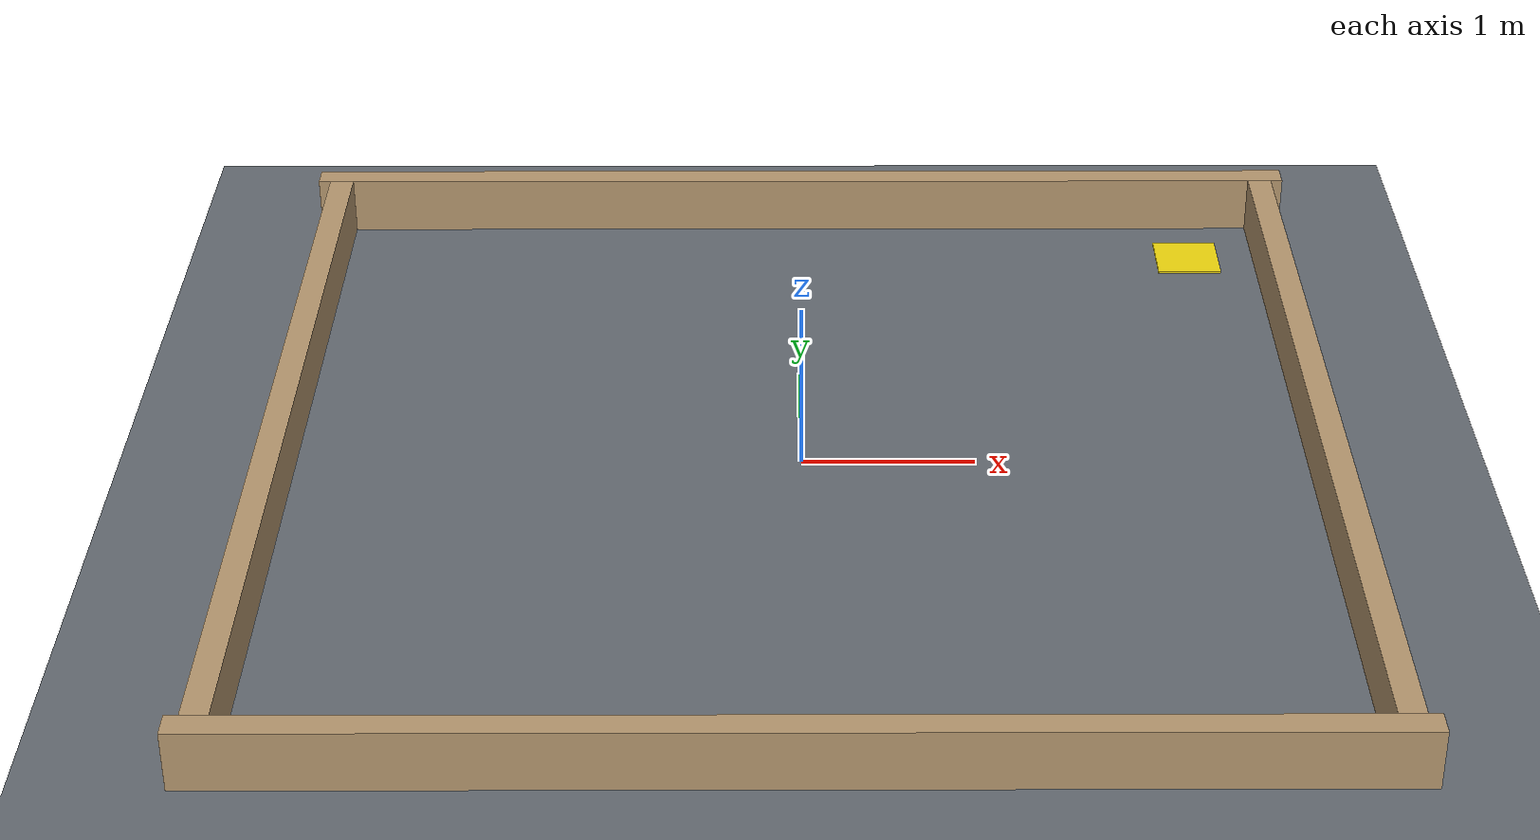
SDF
<sdf version="1.8">
 <world name="dynamic_obstacles">
  <physics name="1ms" type="ignored">
   <max_step_size>0.001</max_step_size>
   <real_time_factor>1.0</real_time_factor>
  </physics>
  <plugin filename="gz-sim-physics-system" name="gz::sim::systems::Physics"/>
  <plugin filename="gz-sim-sensors-system" name="gz::sim::systems::Sensors">
   <render_engine>ogre2</render_engine>
  </plugin>
  <plugin filename="gz-sim-user-commands-system" name="gz::sim::systems::UserCommands"/>
  <plugin filename="gz-sim-scene-broadcaster-system" name="gz::sim::systems::SceneBroadcaster"/>
  <plugin filename="gz-sim-contact-system" name="gz::sim::systems::Contact"/>
  <plugin filename="gz-sim-imu-system" name="gz::sim::systems::Imu"/>
  <light type="directional" name="overhead">
   <cast_shadows>false</cast_shadows>
   <pose>0 0 10 0 0 0</pose>
   <diffuse>1.0 1.0 1.0 1</diffuse>
   <specular>0.05 0.05 0.05 1</specular>
   <direction>0 0 -1</direction>
  </light>
  <model name="ground_plane">
   <static>true</static>
   <link name="link">
    <collision name="col"><geometry><plane><normal>0 0 1</normal><size>20 20</size></plane></geometry></collision>
    <visual name="vis">
     <geometry><plane><normal>0 0 1</normal><size>20 20</size></plane></geometry>
     <material><ambient>0.40 0.42 0.45 1</ambient><diffuse>0.40 0.42 0.45 1</diffuse></material>
    </visual>
   </link>
  </model>
  <model name="wall_south">
   <static>true</static>
   <pose>0 -3 0.175 0 0 0</pose>
   <link name="link">
    <collision name="c"><geometry><box><size>6.30 0.15 0.35</size></box></geometry></collision>
    <visual name="v">
     <geometry><box><size>6.30 0.15 0.35</size></box></geometry>
     <material><ambient>0.72 0.60 0.44 1</ambient><diffuse>0.72 0.60 0.44 1</diffuse></material>
    </visual>
   </link>
  </model>
  <model name="wall_north">
   <static>true</static>
   <pose>0 3 0.175 0 0 0</pose>
   <link name="link">
    <collision name="c"><geometry><box><size>6.30 0.15 0.35</size></box></geometry></collision>
    <visual name="v">
     <geometry><box><size>6.30 0.15 0.35</size></box></geometry>
     <material><ambient>0.72 0.60 0.44 1</ambient><diffuse>0.72 0.60 0.44 1</diffuse></material>
    </visual>
   </link>
  </model>
  <model name="wall_west">
   <static>true</static>
   <pose>-3 0 0.175 0 0 0</pose>
   <link name="link">
    <collision name="c"><geometry><box><size>0.15 5.85 0.35</size></box></geometry></collision>
    <visual name="v">
     <geometry><box><size>0.15 5.85 0.35</size></box></geometry>
     <material><ambient>0.72 0.60 0.44 1</ambient><diffuse>0.72 0.60 0.44 1</diffuse></material>
    </visual>
   </link>
  </model>
  <model name="wall_east">
   <static>true</static>
   <pose>3 0 0.175 0 0 0</pose>
   <link name="link">
    <collision name="c"><geometry><box><size>0.15 5.85 0.35</size></box></geometry></collision>
    <visual name="v">
     <geometry><box><size>0.15 5.85 0.35</size></box></geometry>
     <material><ambient>0.72 0.60 0.44 1</ambient><diffuse>0.72 0.60 0.44 1</diffuse></material>
    </visual>
   </link>
  </model>
  <model name="goal_marker">
   <static>true</static>
   <pose>2.5 2.5 0.005 0 0 0</pose>
   <link name="link">
    <visual name="v">
     <geometry><box><size>0.40 0.40 0.01</size></box></geometry>
     <material><ambient>0.95 0.85 0.05 1</ambient><diffuse>0.95 0.85 0.05 1</diffuse></material>
    </visual>
   </link>
  </model>
 </world>
</sdf>
